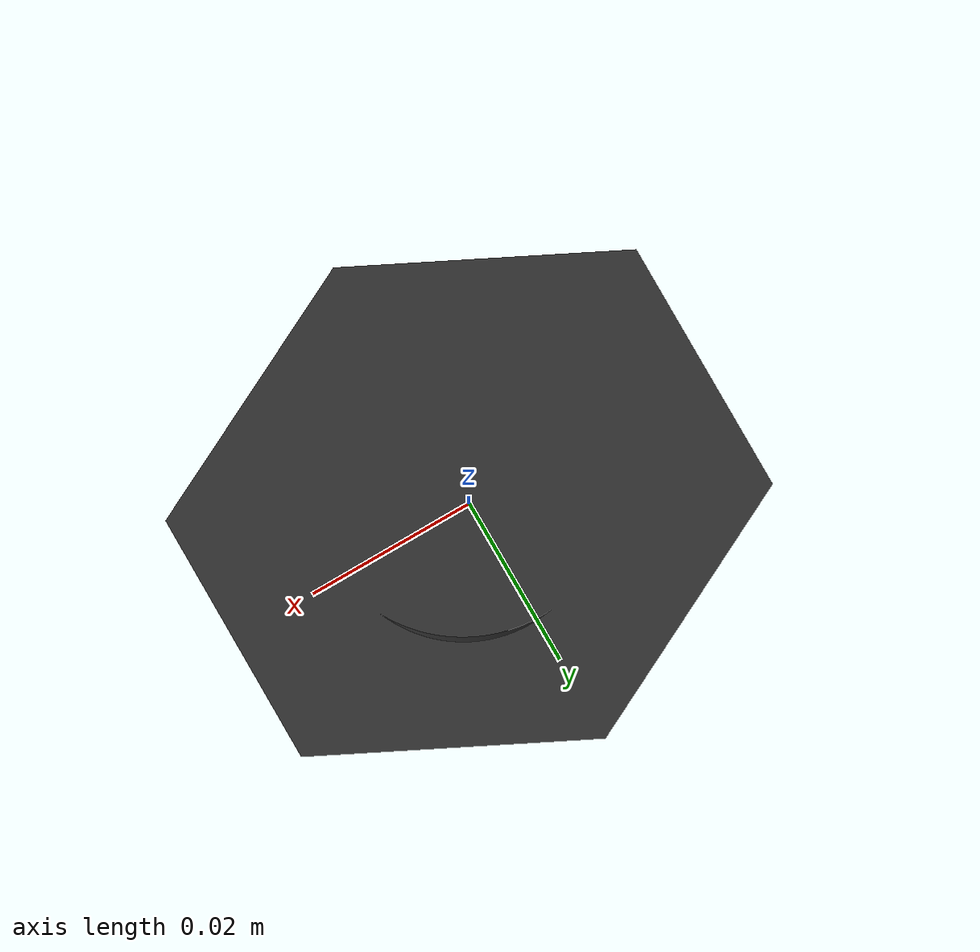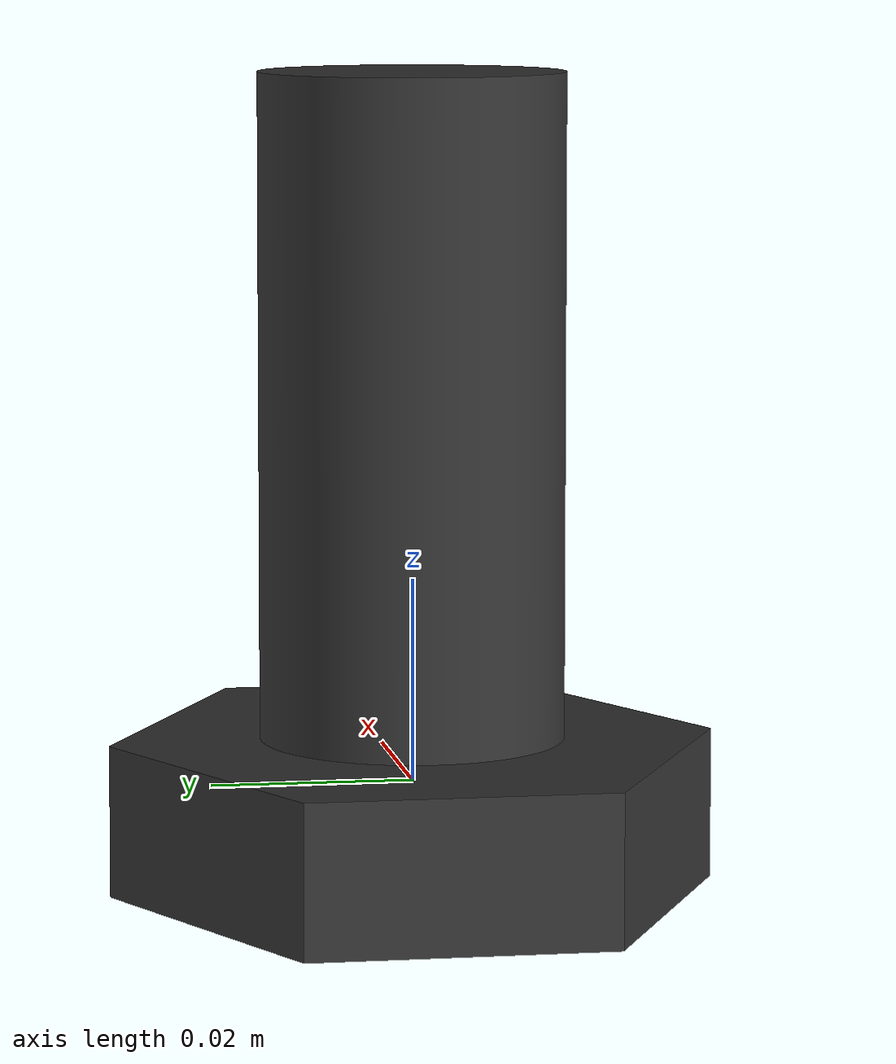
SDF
<?xml version="1.0" ?>
<sdf version="1.5">
  <model name="bolt">
  	<static>0</static>
    <link name="link">
		<inertial>
			<mass>0.2</mass>
		</inertial>

      <visual name="visual">
        <geometry>
          <mesh>
            <uri>model://bolt/meshes/bolt.dae</uri>
          </mesh>
        </geometry>
	<material>
		<ambient>0.2 0.2 0.2  1</ambient>
 	</material>
      </visual>

      <collision name="collision">
        <geometry>
          <mesh>
            <uri>model://bolt/meshes/bolt.dae</uri>
          </mesh>
        </geometry>
      </collision>
    </link>
  </model>
</sdf>
